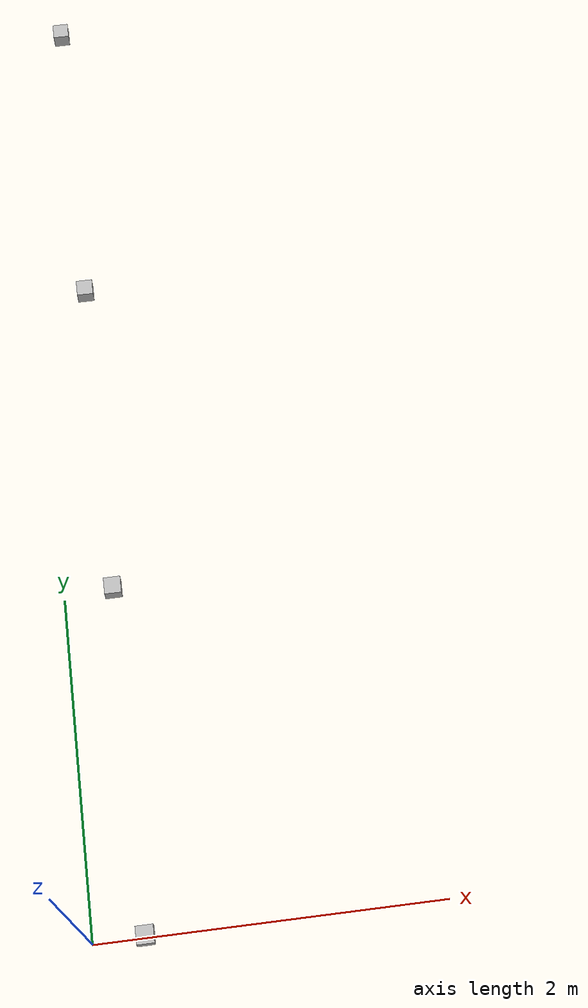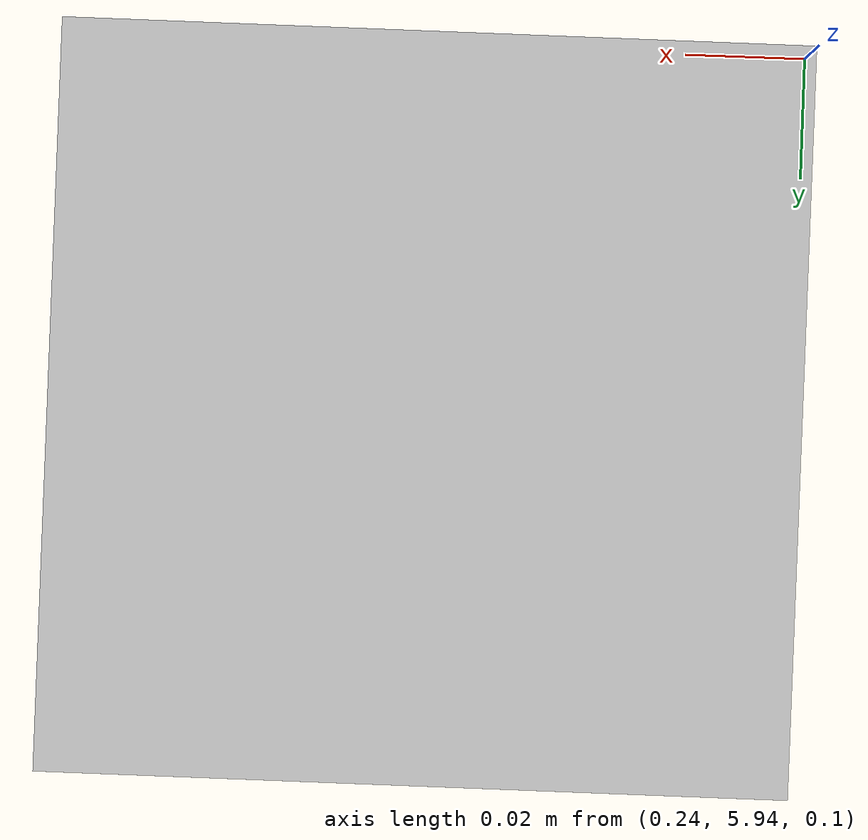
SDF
<sdf version="1.7">
 <world name="default">
  <light name="sun" type="directional">
   <diffuse>1 1 1 1</diffuse>
   <specular>0.2 0.2 0.2 1</specular>
   <direction>-1 0 -0.2</direction>
   <attenuation><range>10</range></attenuation>
   <spot><inner_angle>0</inner_angle><outer_angle>0</outer_angle><falloff>0</falloff></spot>
  </light>
  <scene><shadows>0</shadows></scene>
  <model name="camera_distortion_default">
   <static>1</static>
   <pose>0.3 0 0.15 0 0 3.14159265</pose>
   <link name="link">
    <visual name="visual"><geometry><box><size>0.1 0.1 0.1</size></box></geometry></visual>
    <sensor name="camera_distortion_default" type="camera">
     <camera>
      <horizontal_fov>1.047</horizontal_fov>
      <image><width>12</width><height>12</height></image>
      <clip><near>0.1</near><far>100</far></clip>
      <distortion><k1>-0.25</k1><k2>0</k2><k3>0</k3><p1>0</p1><p2>0</p2><center>0.5 0.5</center></distortion>
     </camera>
     <always_on>1</always_on>
     <update_rate>10</update_rate>
    </sensor>
   </link>
  </model>
  <model name="camera_distortion_test">
   <static>1</static>
   <pose>0.3 2 0.15 0 0 3.14159265</pose>
   <link name="link">
    <visual name="visual"><geometry><box><size>0.1 0.1 0.1</size></box></geometry></visual>
    <sensor name="camera_distortion_test" type="camera">
     <camera>
      <horizontal_fov>1.047</horizontal_fov>
      <image><width>12</width><height>12</height></image>
      <clip><near>0.1</near><far>100</far></clip>
      <distortion>
       <k1>-0.25</k1>
       <k2>0</k2>
       <k3>0</k3>
       <p1>0</p1>
       <p2>0</p2>
       <center>0.5 0.5</center>
       <compositor>CameraDistortionMap/PF_FLOAT32_R</compositor>
      </distortion>
     </camera>
     <always_on>1</always_on>
     <update_rate>10</update_rate>
    </sensor>
   </link>
  </model>
  <model name="camera_lens_flare_default">
   <static>1</static>
   <pose>0.3 4 0.15 0 0 3.14159265</pose>
   <link name="link">
    <visual name="visual"><geometry><box><size>0.1 0.1 0.1</size></box></geometry></visual>
    <sensor name="camera_lens_flare_default" type="camera">
     <camera>
      <horizontal_fov>1.047</horizontal_fov>
      <image><width>12</width><height>12</height></image>
      <clip><near>0.1</near><far>100</far></clip>
     </camera>
     <always_on>1</always_on>
     <update_rate>10</update_rate>
     <plugin name="lensflare" filename="libLensFlareSensorPlugin.so"/>
    </sensor>
   </link>
  </model>
  <model name="camera_lens_flare_test">
   <static>1</static>
   <pose>0.3 6 0.15 0 0 3.14159265</pose>
   <link name="link">
    <visual name="visual"><geometry><box><size>0.1 0.1 0.1</size></box></geometry></visual>
    <sensor name="camera_lens_flare_test" type="camera">
     <camera>
      <horizontal_fov>1.047</horizontal_fov>
      <image><width>12</width><height>12</height></image>
      <clip><near>0.1</near><far>100</far></clip>
     </camera>
     <always_on>1</always_on>
     <update_rate>10</update_rate>
     <plugin name="lensflare" filename="libLensFlareSensorPlugin.so">
      <compositor>CameraLensFlare/PF_FLOAT32_R</compositor>
     </plugin>
    </sensor>
   </link>
  </model>
 </world>
</sdf>
